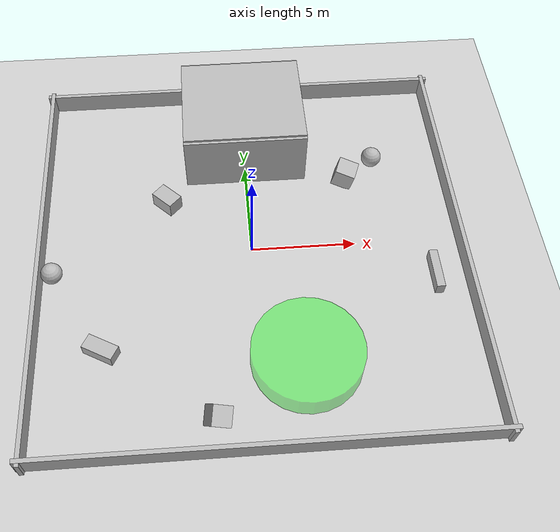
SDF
<sdf version="1.6">
 <world name="hazard_world">
  <physics type="ode">
   <real_time_update_rate>1000.0</real_time_update_rate>
   <max_step_size>0.001</max_step_size>
   <real_time_factor>1.0</real_time_factor>
   <ode><solver><type>quick</type><iters>70</iters><sor>1.3</sor></solver></ode>
  </physics>
  <scene>
   <ambient>0.4 0.2 0.1 1</ambient>
   <background>0.7 0.4 0.3 1</background>
   <shadows>true</shadows>
   <sky>
    <time>18.5</time>
    <sunrise>6.0</sunrise>
    <sunset>19.0</sunset>
    <clouds><speed>0.6</speed><humidity>0.5</humidity></clouds>
   </sky>
   <fog><color>0.5 0.2 0.1 1</color><type>linear</type><start>15.0</start><end>80.0</end></fog>
  </scene>
  <light name="sun" type="directional">
   <pose>0 0 10 0.8 0 0</pose>
   <diffuse>0.9 0.5 0.2 1</diffuse>
   <specular>0.2 0.2 0.2 1</specular>
   <direction>-0.5 0.1 -0.9</direction>
  </light>
  <light name="tunnel_lamp" type="spot">
   <pose>0 7.0 2.8 0 0 0</pose>
   <diffuse>0.6 0.5 0.2 1</diffuse>
   <specular>0.1 0.1 0.1 1</specular>
   <attenuation><range>6.0</range><constant>0.3</constant></attenuation>
   <direction>0 0 -1</direction>
   <spot><inner_angle>0.6</inner_angle><outer_angle>1.5</outer_angle></spot>
   <plugin name="light_control" filename="libgazebo_ros_light_control.so"><flicker>true</flicker></plugin>
  </light>
  <model name="cracked_ground">
   <static>true</static>
   <link name="link">
    <collision name="collision">
     <geometry><plane><normal>0 0 1</normal><size>100 100</size></plane></geometry>
     <surface><friction><ode><mu>100</mu><mu2>50</mu2></ode></friction></surface>
    </collision>
    <visual name="visual">
     <geometry><plane><normal>0 0 1</normal><size>100 100</size></plane></geometry>
     <material>
      <script>
       <uri>file:///home/ubuntu/catkin_ws/src/com760cw2_group6/media/materials/scripts</uri>
       <name>Apocalypse/GroundTexture</name>
      </script>
     </material>
    </visual>
   </link>
  </model>
  <model name="grid_border">
   <static>true</static>
   <link name="link">
    <collision name="n_c">
     <pose>0 10 0.5 0 0 0</pose>
     <geometry><box><size>20.5 0.2 1.0</size></box></geometry>
    </collision>
    <visual name="n_v">
     <pose>0 10 0.5 0 0 0</pose>
     <geometry><box><size>20.5 0.2 1.0</size></box></geometry>
     <material>
      <script>
       <uri>file:///home/ubuntu/catkin_ws/src/com760cw2_group6/media/materials/scripts</uri>
       <name>Apocalypse/StoneTexture</name>
      </script>
     </material>
    </visual>
    <collision name="s_c">
     <pose>0 -10 0.5 0 0 0</pose>
     <geometry><box><size>20.5 0.2 1.0</size></box></geometry>
    </collision>
    <visual name="s_v">
     <pose>0 -10 0.5 0 0 0</pose>
     <geometry><box><size>20.5 0.2 1.0</size></box></geometry>
     <material>
      <script>
       <uri>file:///home/ubuntu/catkin_ws/src/com760cw2_group6/media/materials/scripts</uri>
       <name>Apocalypse/StoneTexture</name>
      </script>
     </material>
    </visual>
    <collision name="e_c">
     <pose>10 0 0.5 0 0 0</pose>
     <geometry><box><size>0.2 20.5 1.0</size></box></geometry>
    </collision>
    <visual name="e_v">
     <pose>10 0 0.5 0 0 0</pose>
     <geometry><box><size>0.2 20.5 1.0</size></box></geometry>
     <material>
      <script>
       <uri>file:///home/ubuntu/catkin_ws/src/com760cw2_group6/media/materials/scripts</uri>
       <name>Apocalypse/StoneTexture</name>
      </script>
     </material>
    </visual>
    <collision name="w_c">
     <pose>-10 0 0.5 0 0 0</pose>
     <geometry><box><size>0.2 20.5 1.0</size></box></geometry>
    </collision>
    <visual name="w_v">
     <pose>-10 0 0.5 0 0 0</pose>
     <geometry><box><size>0.2 20.5 1.0</size></box></geometry>
     <material>
      <script>
       <uri>file:///home/ubuntu/catkin_ws/src/com760cw2_group6/media/materials/scripts</uri>
       <name>Apocalypse/StoneTexture</name>
      </script>
     </material>
    </visual>
   </link>
  </model>
  <model name="path_tunnel">
   <static>true</static>
   <pose>0 7.0 -0.2 0 0 0</pose>
   <link name="link">
    <collision name="wall_l">
     <pose>0 -2.5 1.6 0 0 0</pose>
     <geometry><box><size>6.0 0.5 3.2</size></box></geometry>
    </collision>
    <visual name="v_l">
     <pose>0 -2.5 1.6 0 0 0</pose>
     <geometry><box><size>6.0 0.5 3.2</size></box></geometry>
     <material>
      <script>
       <uri>file:///home/ubuntu/catkin_ws/src/com760cw2_group6/media/materials/scripts</uri>
       <name>Apocalypse/StoneTexture</name>
      </script>
     </material>
    </visual>
    <collision name="wall_r">
     <pose>0 2.5 1.6 0 0 0</pose>
     <geometry><box><size>6.0 0.5 3.2</size></box></geometry>
    </collision>
    <visual name="v_r">
     <pose>0 2.5 1.6 0 0 0</pose>
     <geometry><box><size>6.0 0.5 3.2</size></box></geometry>
     <material>
      <script>
       <uri>file:///home/ubuntu/catkin_ws/src/com760cw2_group6/media/materials/scripts</uri>
       <name>Apocalypse/StoneTexture</name>
      </script>
     </material>
    </visual>
    <collision name="roof">
     <pose>0 0 3.2 0 0 0</pose>
     <geometry><box><size>6.0 5.2 0.2</size></box></geometry>
    </collision>
    <visual name="v_roof">
     <pose>0 0 3.2 0 0 0</pose>
     <geometry><box><size>6.0 5.2 0.2</size></box></geometry>
     <material>
      <script>
       <uri>file:///home/ubuntu/catkin_ws/src/com760cw2_group6/media/materials/scripts</uri>
       <name>Apocalypse/StoneTexture</name>
      </script>
     </material>
    </visual>
    <collision name="c_debris_1">
     <pose>-1.5 1.2 0.6 0.2 0.5 0.7</pose>
     <geometry><box><size>1.2 0.6 0.8</size></box></geometry>
     <surface><friction><ode><mu>100</mu><mu2>50</mu2></ode></friction></surface>
    </collision>
    <visual name="v_debris_1">
     <pose>-1.5 1.2 0.6 0.2 0.5 0.7</pose>
     <geometry><box><size>1.2 0.6 0.8</size></box></geometry>
     <material>
      <script>
       <uri>file:///home/ubuntu/catkin_ws/src/com760cw2_group6/media/materials/scripts</uri>
       <name>Apocalypse/StoneTexture</name>
      </script>
     </material>
    </visual>
    <collision name="c_debris_2">
     <pose>1.5 -1.2 0.5 -0.3 0 0.4</pose>
     <geometry><box><size>1.0 1.0 0.6</size></box></geometry>
     <surface><friction><ode><mu>100</mu><mu2>50</mu2></ode></friction></surface>
    </collision>
    <visual name="v_debris_2">
     <pose>1.5 -1.2 0.5 -0.3 0 0.4</pose>
     <geometry><box><size>1.0 1.0 0.6</size></box></geometry>
     <material>
      <script>
       <uri>file:///home/ubuntu/catkin_ws/src/com760cw2_group6/media/materials/scripts</uri>
       <name>Apocalypse/StoneTexture</name>
      </script>
     </material>
    </visual>
   </link>
  </model>
  <model name="hazard_rolling_1">
   <pose>6.5 5 0.5 0 0 0</pose>
   <link name="link">
    <visual name="v">
     <geometry><sphere><radius>0.5</radius></sphere></geometry>
     <material>
      <script>
       <uri>file:///home/ubuntu/catkin_ws/src/com760cw2_group6/media/materials/scripts</uri>
       <name>Apocalypse/FireballTexture</name>
      </script>
      <emissive>1 0.3 0 1</emissive>
     </material>
    </visual>
    <collision name="c"><geometry><sphere><radius>0.5</radius></sphere></geometry></collision>
   </link>
   <plugin name="object_controller" filename="libgazebo_ros_planar_move.so">
    <commandTopic>/hazard_1/cmd_vel</commandTopic>
    <odometryTopic>odom</odometryTopic>
    <odometryFrame>odom</odometryFrame>
    <odometryRate>20.0</odometryRate>
    <robotBaseFrame>link</robotBaseFrame>
   </plugin>
  </model>
  <model name="hazard_rolling_2">
   <pose>-9.4 -1 0.5 0 0 0</pose>
   <link name="link">
    <visual name="v">
     <geometry><sphere><radius>0.5</radius></sphere></geometry>
     <material>
      <script>
       <uri>file:///home/ubuntu/catkin_ws/src/com760cw2_group6/media/materials/scripts</uri>
       <name>Apocalypse/FireballTexture</name>
      </script>
      <emissive>1 0.3 0 1</emissive>
     </material>
    </visual>
    <collision name="c"><geometry><sphere><radius>0.5</radius></sphere></geometry></collision>
   </link>
   <plugin name="object_controller" filename="libgazebo_ros_planar_move.so">
    <commandTopic>/hazard_2/cmd_vel</commandTopic>
    <odometryTopic>odom</odometryTopic>
    <odometryFrame>odom</odometryFrame>
    <odometryRate>20.0</odometryRate>
    <robotBaseFrame>link</robotBaseFrame>
   </plugin>
  </model>
  <model name="poison_gas_zone">
   <static>true</static>
   <pose>2.0 -6.0 0.6 0 0 0</pose>
   <link name="gas_link">
    <visual name="v">
     <geometry><cylinder><radius>2.5</radius><length>1.2</length></cylinder></geometry>
     <material><ambient>0 1 0 0.4</ambient><diffuse>0 1 0 0.4</diffuse><emissive>0 0.2 0 1</emissive></material>
    </visual>
    <collision name="gas_collision">
     <geometry><cylinder><radius>2.5</radius><length>1.2</length></cylinder></geometry>
     <surface><contact><collide_bitmask>0x00</collide_bitmask></contact></surface>
    </collision>
    <sensor name="gas_contact_sensor" type="contact">
     <always_on>true</always_on>
     <update_rate>20</update_rate>
     <contact><collision>gas_link::gas_collision</collision></contact>
     <plugin name="gas_plugin" filename="libgazebo_ros_bumper.so">
      <bumperTopicName>gas_touch</bumperTopicName>
      <frameName>world</frameName>
     </plugin>
    </sensor>
   </link>
  </model>
  <model name="random_stone_1">
   <static>true</static>
   <pose>-4.0 3.0 0.4 0 0 0.8</pose>
   <link name="link">
    <collision name="c">
     <geometry><box><size>0.8 1.2 0.8</size></box></geometry>
     <surface>
      <friction><ode><mu>100</mu><mu2>50</mu2></ode></friction>
      <contact><ode><kp>1e+06</kp><kd>1.0</kd></ode></contact>
     </surface>
    </collision>
    <visual name="v">
     <geometry><box><size>0.8 1.2 0.8</size></box></geometry>
     <material>
      <script>
       <uri>file:///home/ubuntu/catkin_ws/src/com760cw2_group6/media/materials/scripts</uri>
       <name>Apocalypse/StoneTexture</name>
      </script>
     </material>
    </visual>
   </link>
  </model>
  <model name="random_stone_2">
   <static>true</static>
   <pose>5.0 4.0 0.5 0.2 0 1.2</pose>
   <link name="link">
    <collision name="c">
     <geometry><box><size>1.0 1.0 1.0</size></box></geometry>
     <surface>
      <friction><ode><mu>100</mu><mu2>50</mu2></ode></friction>
      <contact><ode><kp>1e+06</kp><kd>1.0</kd></ode></contact>
     </surface>
    </collision>
    <visual name="v">
     <geometry><box><size>1.0 1.0 1.0</size></box></geometry>
     <material>
      <script>
       <uri>file:///home/ubuntu/catkin_ws/src/com760cw2_group6/media/materials/scripts</uri>
       <name>Apocalypse/StoneTexture</name>
      </script>
     </material>
    </visual>
   </link>
  </model>
  <model name="random_stone_3">
   <static>true</static>
   <pose>-7.0 -5.0 0.3 0 0 -0.5</pose>
   <link name="link">
    <collision name="c">
     <geometry><box><size>1.5 0.7 0.6</size></box></geometry>
     <surface>
      <friction><ode><mu>100</mu><mu2>50</mu2></ode></friction>
      <contact><ode><kp>1e+06</kp><kd>1.0</kd></ode></contact>
     </surface>
    </collision>
    <visual name="v">
     <geometry><box><size>1.5 0.7 0.6</size></box></geometry>
     <material>
      <script>
       <uri>file:///home/ubuntu/catkin_ws/src/com760cw2_group6/media/materials/scripts</uri>
       <name>Apocalypse/StoneTexture</name>
      </script>
     </material>
    </visual>
   </link>
  </model>
  <model name="random_stone_4">
   <static>true</static>
   <pose>2.0 9.0 0.4 0 0 0.3</pose>
   <link name="link">
    <collision name="c">
     <geometry><box><size>0.6 0.6 0.8</size></box></geometry>
     <surface>
      <friction><ode><mu>100</mu><mu2>50</mu2></ode></friction>
      <contact><ode><kp>1e+06</kp><kd>1.0</kd></ode></contact>
     </surface>
    </collision>
    <visual name="v">
     <geometry><box><size>0.6 0.6 0.8</size></box></geometry>
     <material>
      <script>
       <uri>file:///home/ubuntu/catkin_ws/src/com760cw2_group6/media/materials/scripts</uri>
       <name>Apocalypse/StoneTexture</name>
      </script>
     </material>
    </visual>
   </link>
  </model>
  <model name="random_stone_5">
   <static>true</static>
   <pose>-2.0 -8.5 0.5 0.4 0.4 0</pose>
   <link name="link">
    <collision name="c">
     <geometry><box><size>0.9 0.9 1.0</size></box></geometry>
     <surface>
      <friction><ode><mu>100</mu><mu2>50</mu2></ode></friction>
      <contact><ode><kp>1e+06</kp><kd>1.0</kd></ode></contact>
     </surface>
    </collision>
    <visual name="v">
     <geometry><box><size>0.9 0.9 1.0</size></box></geometry>
     <material>
      <script>
       <uri>file:///home/ubuntu/catkin_ws/src/com760cw2_group6/media/materials/scripts</uri>
       <name>Apocalypse/StoneTexture</name>
      </script>
     </material>
    </visual>
   </link>
  </model>
  <model name="random_stone_6">
   <static>true</static>
   <pose>8.5 -2.0 0.3 0 0 1.57</pose>
   <link name="link">
    <collision name="c">
     <geometry><box><size>2.0 0.4 0.6</size></box></geometry>
     <surface>
      <friction><ode><mu>100</mu><mu2>50</mu2></ode></friction>
      <contact><ode><kp>1e+06</kp><kd>1.0</kd></ode></contact>
     </surface>
    </collision>
    <visual name="v">
     <geometry><box><size>2.0 0.4 0.6</size></box></geometry>
     <material>
      <script>
       <uri>file:///home/ubuntu/catkin_ws/src/com760cw2_group6/media/materials/scripts</uri>
       <name>Apocalypse/StoneTexture</name>
      </script>
     </material>
    </visual>
   </link>
  </model>
  <plugin name="gazebo_ros_state" filename="libgazebo_ros_state.so">
   <ros><namespace>/hazard_world</namespace></ros>
   <update_rate>10.0</update_rate>
  </plugin>
 </world>
</sdf>
